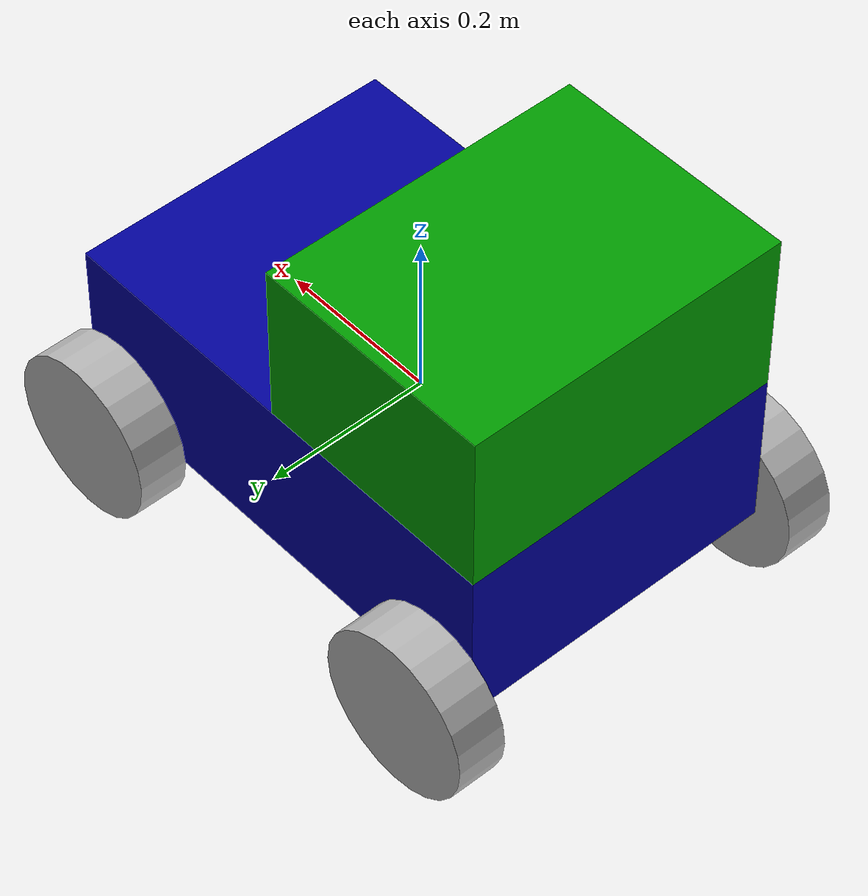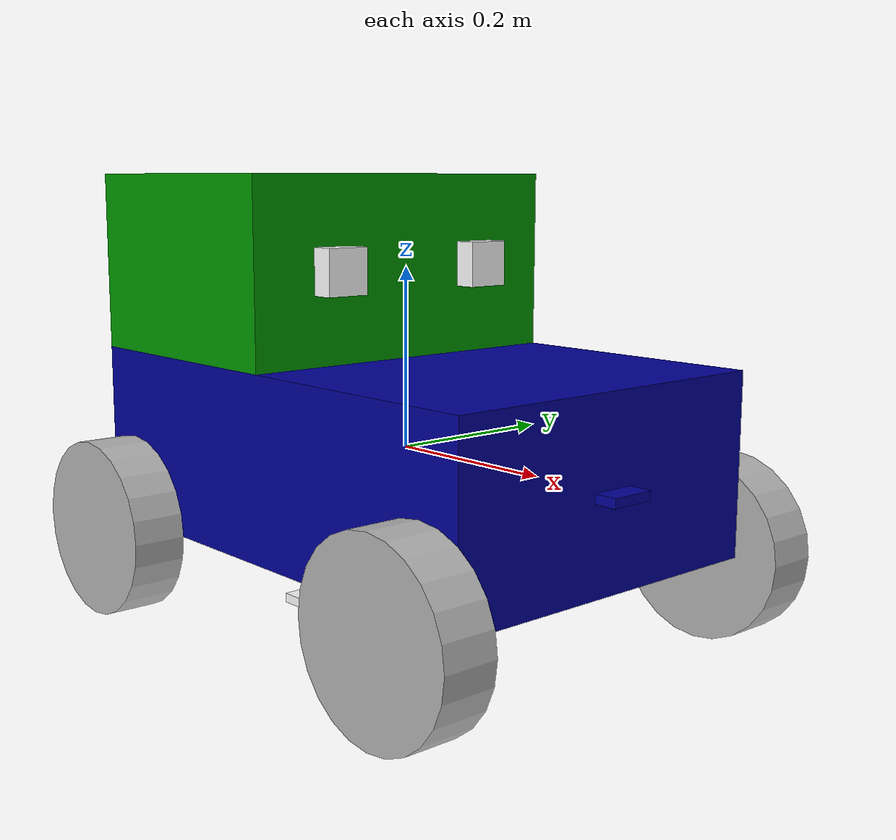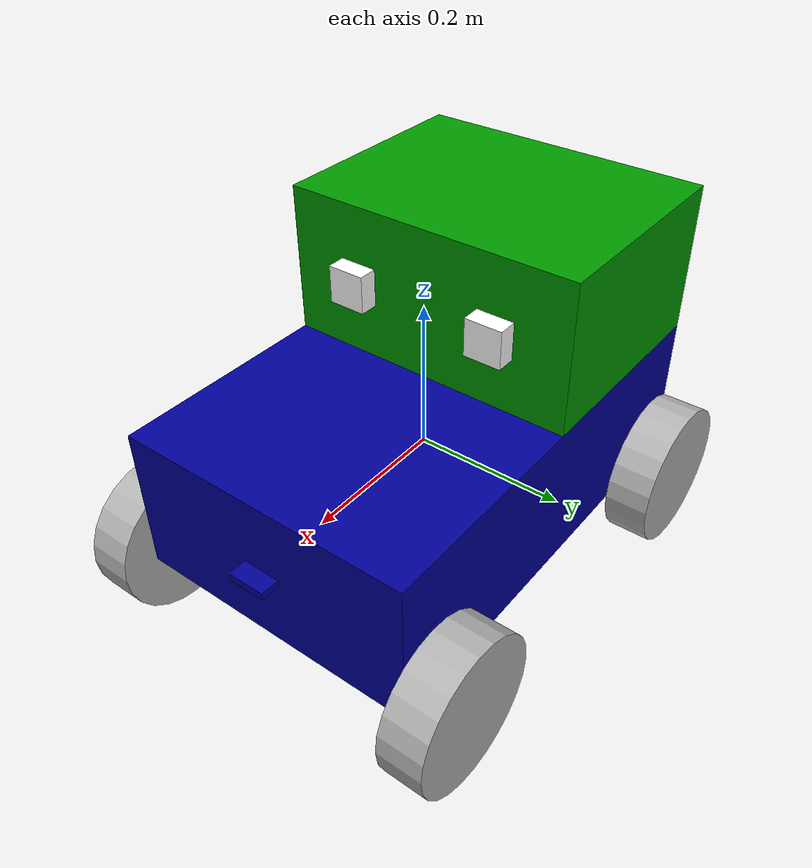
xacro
<?xml version='1.0'?>
<robot name="grass_cutter" xmlns:xacro="http://www.ros.org/wiki/xacro">

    <material name="grey">
        <color rgba="0.7 0.7 0.7 1"/>
    </material>

    <material name="blue">
        <color rgba="0 0 0.6 1"/>
    </material>

    <material name="white">
        <color rgba="1 1 1 1"/>
    </material>

    <material name="green">
        <color rgba="0 0.6 0 1"/>
    </material>

    <link name="base_footprint">
    </link>

    <link name="base_link">
        <inertial>
            <mass value="50.0"/>
            <origin xyz="0 0 0.1" rpy="0 0 0"/>
            <inertia ixx="0.033" ixy="0.0" ixz="0.0" iyy="0.017" iyz="0.0" izz="0.008"/>
        </inertial>
        <visual>
            <geometry>
                <box size="0.6 0.4 0.2" />
            </geometry>
            <material name="blue"/>
            <origin xyz="0 0 0" rpy="0 0 0" />
        </visual>
        <collision>
            <geometry>
                <box size="0.6 0.4 0.2"/>
            </geometry>
            <origin xyz="0 0 0" rpy="0 0 0"/>
        </collision>
    </link>

    <gazebo reference="base_link">
        <material> Gazebo/Blue</material>
    </gazebo>

    <link name="top_link">
        <inertial>
            <mass value="50.0"/>
            <origin xyz="0 0 0.1" rpy="0 0 0"/>
            <inertia ixx="0.015" ixy="0.0" ixz="0.0" iyy="0.008" iyz="0.0" izz="0.004"/>
        </inertial>
        <visual>
            <geometry>
                <box size="0.3 0.4 0.2"/>
            </geometry>
            <material name="green"/>
            <origin xyz="-0.15 0 0.2" rpy="0 0 0" />
        </visual>
        <collision>
            <geometry>
                <box size="0.3 0.4 0.2"/>
            </geometry>
            <origin xyz="-0.15 0 0.2" rpy="0 0 0"/>
        </collision>
    </link>
    <gazebo reference="top_link">
        <material> Gazebo/Red</material>
    </gazebo>

    <link name="wheel_front_left">
        <inertial>
            <mass value="30"/>
            <origin xyz="0 0 0" rpy="0 0 0"/>
            <inertia ixx="0.0003" ixy="0.0" ixz="0.0" iyy="0.0003" iyz="0.0" izz="0.0001"/>
        </inertial>
        <visual>
            <geometry>
                <cylinder radius="0.1" length="0.06"/>
            </geometry>
            <material name="grey"/>
            <origin xyz="0 0 0" rpy="1.57 0 0"/>
        </visual>
        <collision>
            <geometry>
                <cylinder radius="0.1" length="0.06"/>
            </geometry>
            <origin xyz="0 0 0" rpy="1.57 0 0"/>
        </collision>
    </link>
    <gazebo reference="wheel_front_left">
		<material>Gazebo/Black</material>
		<mu1 value="5" />
		<mu2 value="5" />
	</gazebo>

    <link name="wheel_back_left">
        <inertial>
            <mass value="30"/>
            <origin xyz="0 0 0" rpy="0 0 0"/>
            <inertia ixx="0.0003" ixy="0.0" ixz="0.0" iyy="0.0003" iyz="0.0" izz="0.0001"/>
        </inertial>
        <visual>
            <geometry>
                <cylinder radius="0.1" length="0.06"/>
            </geometry>
            <material name="grey"/>
            <origin xyz="0 0 0" rpy="1.57 0 0"/>
        </visual>
        <collision>
            <geometry>
                <cylinder radius="0.1" length="0.06"/>
            </geometry>
            <origin xyz="0 0 0" rpy="1.57 0 0"/>
        </collision>
    </link>
    <gazebo reference="wheel_back_left">
		<material>Gazebo/Black</material>
		<mu1 value="5" />
		<mu2 value="5" />
	</gazebo>

    <link name="wheel_front_right">
        <inertial>
            <mass value="30"/>
            <origin xyz="0 0 0" rpy="0 0 0"/>
            <inertia ixx="0.0003" ixy="0.0" ixz="0.0" iyy="0.0003" iyz="0.0" izz="0.0001"/>
        </inertial>
        <visual>
            <geometry>
                <cylinder radius="0.1" length="0.06"/>
            </geometry>
            <material name="grey"/>
            <origin xyz="0 0 0" rpy="1.57 0 0"/>
        </visual>
        <collision>
            <geometry>
                <cylinder radius="0.1" length="0.06"/>
            </geometry>
            <origin xyz="0 0 0" rpy="1.57 0 0"/>
        </collision>
    </link>
    <gazebo reference="wheel_front_right">
		<material>Gazebo/Black</material>
		<mu1 value="5" />
		<mu2 value="5" />
	</gazebo>

    <link name="wheel_back_right">
        <inertial>
            <mass value="30"/>
            <origin xyz="0 0 0" rpy="0 0 0"/>
            <inertia ixx="0.0003" ixy="0.0" ixz="0.0" iyy="0.0003" iyz="0.0" izz="0.0001"/>
        </inertial>
        <visual>
            <geometry>
                <cylinder radius="0.1" length="0.06"/>
            </geometry>
            <material name="grey"/>
            <origin xyz="0 0 0" rpy="1.57 0 0"/>
        </visual>
        <collision>
            <geometry>
                <cylinder radius="0.1" length="0.06"/>
            </geometry>
            <origin xyz="0 0 0" rpy="1.57 0 0"/>
        </collision>
    </link>
    <gazebo reference="wheel_back_right">
		<material>Gazebo/Black</material>
		<mu1 value="5" />
		<mu2 value="5" />
	</gazebo>

    <link name="blade_link">
        <inertial>
            <mass value="5"/>
            <origin xyz="0 0 0" rpy="0 0 0"/>
            <inertia ixx="0.0001" ixy="0.0" ixz="0.0" iyy="0.00005" iyz="0.0" izz="0.00005"/>
        </inertial>
        <visual>
            <geometry>
                <box size="0.3 0.05 0.01"/>
            </geometry>
            <origin xyz="0 0 0" rpy="0 0 1.57"/>
            <material name="white"/>
        </visual>
        <collision>
            <geometry>
                <box size="0.3 0.05 0.01"/>
            </geometry>
            <origin xyz="0 0 0" rpy="0 0 1.57"/>
        </collision>
    </link>

    <link name="left_camera_link">
        <inertial>
            <mass value="20"/>
            <origin xyz="0 0 0" rpy="0 0 0"/>
            <inertia ixx="0.00005" ixy="0.0" ixz="0.0" iyy="0.00005" iyz="0.0" izz="0.00005"/>
        </inertial>
        <visual>
            <geometry>
                <box size="0.05 0.05 0.05" />
            </geometry>
            <material name="white"/>
            <origin xyz="0 0 0" rpy="0 0 0" /> <!-- Position it correctly -->
        </visual>
        <collision>
            <geometry>
                <box size="0.05 0.05 0.05"/>
            </geometry>
            <origin xyz="0 0 0" rpy="0 0 0"/>
        </collision>
    </link>
    <gazebo reference="left_camera_link">
        <material> Gazebo/White</material>
        <sensor name="left_camera_sensor" type="camera">
            <pose>0 0 0 0 0 0</pose>
            <visualize>true</visualize>
            <update_rate>10.0</update_rate>
            <plugin name="camera_controller" filename="libgazebo_ros_camera.so">
                <baseline>0.2</baseline>
                <alwaysOn>true</alwaysOn>
                <updateRate>0.0</updateRate>
                <frame_name>left_camera_link</frame_name>
            </plugin>

        </sensor>

    </gazebo>

    <link name="right_camera_link">
        <inertial>
            <mass value="20"/>
            <origin xyz="0 0 0" rpy="0 0 0"/>
            <inertia ixx="0.00005" ixy="0.0" ixz="0.0" iyy="0.00005" iyz="0.0" izz="0.00005"/>
        </inertial>
        <visual>
            <geometry>
                <box size="0.05 0.05 0.05" />
            </geometry>
            <material name="white"/>
            <origin xyz="0 0 0" rpy="0 0 0" /> <!-- Position it correctly -->
        </visual>
        <collision>
            <geometry>
                <box size="0.05 0.05 0.05"/>
            </geometry>
            <origin xyz="0 0 0" rpy="0 0 0"/>
        </collision>
    </link>
    <gazebo reference="right_camera_link">
        <material> Gazebo/White</material>
        <sensor name="right_camera_sensor" type="camera">
            <pose>0 0 0 0 0 0</pose>
            <visualize>true</visualize>
            <update_rate>10.0</update_rate>
            <plugin name="camera_controllers" filename="libgazebo_ros_camera.so">
                <baseline>0.2</baseline>
                <alwaysOn>true</alwaysOn>
                <updateRate>0.0</updateRate>
                <frame_name>right_camera_link</frame_name>
            </plugin>

        </sensor>

    </gazebo>

    <link name="imu_link">
        <inertial>
            <mass value="50"/>
            <origin xyz="0 0 0" rpy="0 0 0"/>
            <inertia ixx="0.00005" ixy="0.0" ixz="0.0" iyy="0.00005" iyz="0.0" izz="0.00005"/>
        </inertial>
        <visual>
            <geometry>
                <box size="0.05 0.05 0.01" />
            </geometry>
            <material name="blue"/>
            <origin xyz="0 0 0" rpy="0 0 0"/> <!-- Adjust position as needed -->
        </visual>
        <collision>
            <geometry>
                <box size="0.05 0.05 0.05"/>
            </geometry>
            <origin xyz="0 0 0" rpy="0 0 0"/>
        </collision>
    </link>

    <gazebo reference="imu_link">
    <gravity>true</gravity>
    <sensor name="imu_sensor" type="imu">
        <always_on>true</always_on>
        <update_rate>100</update_rate>
        <visualize>true</visualize>
        <topic>__default_topic__</topic>
        <plugin filename="libgazebo_ros_imu_sensor.so" name="imu_sensor">
        <topicName>/imu/imu</topicName>
        <bodyName>imu_link</bodyName>
        <updateRateHZ>100.0</updateRateHZ>
        <gaussianNoise>0.0</gaussianNoise>
        <xyzOffset>0 0 0</xyzOffset>
        <rpyOffset>0 0 0</rpyOffset>
        <frameName>imu_link</frameName>
        <initialOrientationAsReference>false</initialOrientationAsReference>
        <magnetometerTopicName>/imu/compass</magnetometerTopicName>
        <publishMagnetometer>true</publishMagnetometer>
        </plugin>
        <pose>0 0 0 0 0 0</pose>
        </sensor>
  </gazebo>

    <joint name="imu_joint" type="fixed">
        <parent link="base_link"/>
        <child link="imu_link"/>
        <origin xyz="0.3 0 0" rpy="0 0 0"/> <!-- Adjust position as needed -->
    </joint>

    <joint name="right_camera_joint" type="fixed">
        <parent link="top_link"/>
        <child link="right_camera_link"/>
        <origin xyz="0 0.1 0.2" rpy="0 0 0"/>
    </joint>

    <joint name="left_camera_joint" type="fixed">
        <parent link="top_link"/>
        <child link="left_camera_link"/>
        <origin xyz="0 -0.1 0.2" rpy="0 0 0"/>
    </joint>

    <joint name="top_to_base_joint" type="fixed">
        <parent link="base_link"/>
        <child link="top_link"/>
    </joint>

    <joint name="joint_wheel_front_left" type="continuous">
        <parent link="base_link"/>
        <child link="wheel_front_left"/>
        <origin xyz="0.25 0.23 -0.1" rpy="0 0 0"/>
        <axis xyz="0 1 0"/>
    </joint>

    <joint name="joint_wheel_back_left" type="continuous">
        <parent link="base_link"/>
        <child link="wheel_back_left"/>
        <origin xyz="-0.25 0.23 -0.1" rpy="0 0 0"/>
        <axis xyz="0 1 0"/>
    </joint>

    <joint name="joint_wheel_front_right" type="continuous">
        <parent link="base_link"/>
        <child link="wheel_front_right"/>
        <origin xyz="0.25 -0.23 -0.1" rpy="0 0 0"/>
        <axis xyz="0 1 0"/>
    </joint>

    <joint name="joint_wheel_back_right" type="continuous">
        <parent link="base_link"/>
        <child link="wheel_back_right"/>
        <origin xyz="-0.25 -0.23 -0.1" rpy="0 0 0"/>
        <axis xyz="0 1 0"/>
    </joint>

    <joint name="footprint" type="fixed">
        <origin xyz="0 0 0" rpy="0 0 0" />
        <parent link="base_footprint"/>
        <child link="base_link"/>
    </joint>

    <joint name="blade_joint" type="continuous">
        <parent link="base_link"/>
        <child link="blade_link"/>
        <origin xyz="0 0 -0.15" rpy="0 0 0"/>
        <axis xyz="0 0 1"/>
    </joint>

    <gazebo>

        <plugin name="skid_ros_steer_drive" filename="libgazebo_ros_diff_drive.so">

            <ros>

                <!-- Add a namespace -->
                <namespace></namespace>

            </ros>

            <!-- Update rate in Hz -->
            <update_rate>50</update_rate>

            <num_wheel_pairs>2</num_wheel_pairs>

            <!-- wheels -->
            <left_joint>joint_wheel_front_left</left_joint>
            <right_joint>joint_wheel_front_right</right_joint>

            <left_joint>joint_wheel_back_left</left_joint>
            <right_joint>joint_wheel_back_right</right_joint>

            <!-- kinematics -->
            <wheel_separation>0.46</wheel_separation>
            <wheel_diameter>0.2</wheel_diameter>

            <!-- limits -->
            <max_wheel_torque>1000</max_wheel_torque>
            <max_wheel_acceleration>1.0</max_wheel_acceleration>

            <!-- input -->
            <command_topic>cmd_vel</command_topic>

            <!-- output -->
            <publish_odom>true</publish_odom>
            <publish_odom_tf>true</publish_odom_tf>
            <publish_wheel_tf>true</publish_wheel_tf>

            <odometry_topic>odom</odometry_topic>
            <odometry_frame>odom</odometry_frame>
            <robot_base_frame>base_footprint</robot_base_frame>

        </plugin>
    </gazebo>

</robot>
